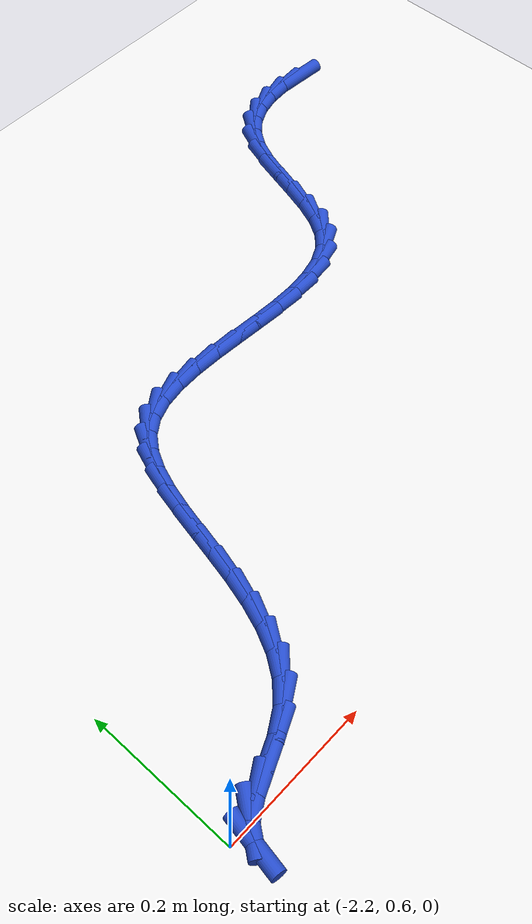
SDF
<sdf version="1.6">
 <world name="default">
  <model name="ground_plane">
   <static>1</static>
   <link name="link">
    <collision name="collision">
     <geometry><plane><normal>0 0 1</normal><size>100 100</size></plane></geometry>
     <surface><friction><ode><mu>100</mu><mu2>50</mu2></ode></friction></surface>
    </collision>
    <visual name="visual">
     <cast_shadows>0</cast_shadows>
     <geometry><plane><normal>0 0 1</normal><size>100 100</size></plane></geometry>
     <material>
      <script><uri>file://media/materials/scripts/gazebo.material</uri><name>Gazebo/WhiteGlow</name></script>
     </material>
    </visual>
   </link>
  </model>
  <model name="line">
   <link name="link_59">
    <pose>-1.2816094033642194 1.319456342314957 0.01 0 1.57 -0.06257776748838324</pose>
    <collision name="collision">
     <geometry><cylinder><radius>0.01</radius><length>0.08</length></cylinder></geometry>
    </collision>
    <visual name="visual">
     <material>
      <script><name>Gazebo/Blue</name><uri>file://media/materials/scripts/gazebo.material</uri></script>
     </material>
     <geometry><cylinder><radius>0.01</radius><length>0.08</length></cylinder></geometry>
    </visual>
   </link>
   <link name="link_60">
    <pose>-1.3143892659631247 1.3215103147380876 0.01 0 1.57 0.07672845350002035</pose>
    <collision name="collision">
     <geometry><cylinder><radius>0.01</radius><length>0.08</length></cylinder></geometry>
    </collision>
    <visual name="visual">
     <material>
      <script><name>Gazebo/Blue</name><uri>file://media/materials/scripts/gazebo.material</uri></script>
     </material>
     <geometry><cylinder><radius>0.01</radius><length>0.08</length></cylinder></geometry>
    </visual>
   </link>
   <link name="link_61">
    <pose>-1.3449915673991546 1.3191576287076126 0.01 0 1.57 0.24920556745682332</pose>
    <collision name="collision">
     <geometry><cylinder><radius>0.01</radius><length>0.08</length></cylinder></geometry>
    </collision>
    <visual name="visual">
     <material>
      <script><name>Gazebo/Blue</name><uri>file://media/materials/scripts/gazebo.material</uri></script>
     </material>
     <geometry><cylinder><radius>0.01</radius><length>0.08</length></cylinder></geometry>
    </visual>
   </link>
   <link name="link_62">
    <pose>-1.3728832882950446 1.3120593011130899 0.01 0 1.57 0.459057203063662</pose>
    <collision name="collision">
     <geometry><cylinder><radius>0.01</radius><length>0.08</length></cylinder></geometry>
    </collision>
    <visual name="visual">
     <material>
      <script><name>Gazebo/Blue</name><uri>file://media/materials/scripts/gazebo.material</uri></script>
     </material>
     <geometry><cylinder><radius>0.01</radius><length>0.08</length></cylinder></geometry>
    </visual>
   </link>
   <link name="link_63">
    <pose>-1.397531409273531 1.299876348844077 0.01 0 1.57 0.7007488997844443</pose>
    <collision name="collision">
     <geometry><cylinder><radius>0.01</radius><length>0.08</length></cylinder></geometry>
    </collision>
    <visual name="visual">
     <material>
      <script><name>Gazebo/Blue</name><uri>file://media/materials/scripts/gazebo.material</uri></script>
     </material>
     <geometry><cylinder><radius>0.01</radius><length>0.08</length></cylinder></geometry>
    </visual>
   </link>
   <link name="link_64">
    <pose>-1.4184029109573502 1.2822697887901326 0.01 0 1.57 0.9533107730913899</pose>
    <collision name="collision">
     <geometry><cylinder><radius>0.01</radius><length>0.08</length></cylinder></geometry>
    </collision>
    <visual name="visual">
     <material>
      <script><name>Gazebo/Blue</name><uri>file://media/materials/scripts/gazebo.material</uri></script>
     </material>
     <geometry><cylinder><radius>0.01</radius><length>0.08</length></cylinder></geometry>
    </visual>
   </link>
   <link name="link_65">
    <pose>-1.4349832308209747 1.2589211661364625 0.01 0 1.57 1.1543083031571306</pose>
    <collision name="collision">
     <geometry><cylinder><radius>0.01</radius><length>0.08</length></cylinder></geometry>
    </collision>
    <visual name="visual">
     <material>
      <script><name>Gazebo/Blue</name><uri>file://media/materials/scripts/gazebo.material</uri></script>
     </material>
     <geometry><cylinder><radius>0.01</radius><length>0.08</length></cylinder></geometry>
    </visual>
   </link>
   <link name="link_66">
    <pose>-1.4475855803237752 1.230432702537639 0.01 0 1.57 1.2633749799399936</pose>
    <collision name="collision">
     <geometry><cylinder><radius>0.01</radius><length>0.08</length></cylinder></geometry>
    </collision>
    <visual name="visual">
     <material>
      <script><name>Gazebo/Blue</name><uri>file://media/materials/scripts/gazebo.material</uri></script>
     </material>
     <geometry><cylinder><radius>0.01</radius><length>0.08</length></cylinder></geometry>
    </visual>
   </link>
   <link name="link_67">
    <pose>-1.4576670085853611 1.198678832157652 0.01 0 1.57 1.3020900851127613</pose>
    <collision name="collision">
     <geometry><cylinder><radius>0.01</radius><length>0.08</length></cylinder></geometry>
    </collision>
    <visual name="visual">
     <material>
      <script><name>Gazebo/Blue</name><uri>file://media/materials/scripts/gazebo.material</uri></script>
     </material>
     <geometry><cylinder><radius>0.01</radius><length>0.08</length></cylinder></geometry>
    </visual>
   </link>
   <link name="link_68">
    <pose>-1.4667683141438332 1.1656271379188876 0.01 0 1.57 1.2808304147023837</pose>
    <collision name="collision">
     <geometry><cylinder><radius>0.01</radius><length>0.08</length></cylinder></geometry>
    </collision>
    <visual name="visual">
     <material>
      <script><name>Gazebo/Blue</name><uri>file://media/materials/scripts/gazebo.material</uri></script>
     </material>
     <geometry><cylinder><radius>0.01</radius><length>0.08</length></cylinder></geometry>
    </visual>
   </link>
   <link name="link_69">
    <pose>-1.4764302955372917 1.1332452027437339 0.01 0 1.57 1.1941907021680145</pose>
    <collision name="collision">
     <geometry><cylinder><radius>0.01</radius><length>0.08</length></cylinder></geometry>
    </collision>
    <visual name="visual">
     <material>
      <script><name>Gazebo/Blue</name><uri>file://media/materials/scripts/gazebo.material</uri></script>
     </material>
     <geometry><cylinder><radius>0.01</radius><length>0.08</length></cylinder></geometry>
    </visual>
   </link>
   <link name="link_70">
    <pose>-1.4881937513038366 1.103500609554577 0.01 0 1.57 1.021014138136253</pose>
    <collision name="collision">
     <geometry><cylinder><radius>0.01</radius><length>0.08</length></cylinder></geometry>
    </collision>
    <visual name="visual">
     <material>
      <script><name>Gazebo/Blue</name><uri>file://media/materials/scripts/gazebo.material</uri></script>
     </material>
     <geometry><cylinder><radius>0.01</radius><length>0.08</length></cylinder></geometry>
    </visual>
   </link>
   <link name="link_71">
    <pose>-1.5035994799815682 1.0783609412738042 0.01 0 1.57 0.7430011290169706</pose>
    <collision name="collision">
     <geometry><cylinder><radius>0.01</radius><length>0.08</length></cylinder></geometry>
    </collision>
    <visual name="visual">
     <material>
      <script><name>Gazebo/Blue</name><uri>file://media/materials/scripts/gazebo.material</uri></script>
     </material>
     <geometry><cylinder><radius>0.01</radius><length>0.08</length></cylinder></geometry>
    </visual>
   </link>
   <link name="link_72">
    <pose>-1.5240296808286748 1.0595935965653562 0.01 0 1.57 0.4569677788438715</pose>
    <collision name="collision">
     <geometry><cylinder><radius>0.01</radius><length>0.08</length></cylinder></geometry>
    </collision>
    <visual name="visual">
     <material>
      <script><name>Gazebo/Blue</name><uri>file://media/materials/scripts/gazebo.material</uri></script>
     </material>
     <geometry><cylinder><radius>0.01</radius><length>0.08</length></cylinder></geometry>
    </visual>
   </link>
   <link name="link_73">
    <pose>-1.5494026702221477 1.0471182588375545 0.01 0 1.57 0.24180379570897376</pose>
    <collision name="collision">
     <geometry><cylinder><radius>0.01</radius><length>0.08</length></cylinder></geometry>
    </collision>
    <visual name="visual">
     <material>
      <script><name>Gazebo/Blue</name><uri>file://media/materials/scripts/gazebo.material</uri></script>
     </material>
     <geometry><cylinder><radius>0.01</radius><length>0.08</length></cylinder></geometry>
    </visual>
   </link>
   <link name="link_74">
    <pose>-1.578846107219926 1.0398566425975548 0.01 0 1.57 0.09580015212663569</pose>
    <collision name="collision">
     <geometry><cylinder><radius>0.01</radius><length>0.08</length></cylinder></geometry>
    </collision>
    <visual name="visual">
     <material>
      <script><name>Gazebo/Blue</name><uri>file://media/materials/scripts/gazebo.material</uri></script>
     </material>
     <geometry><cylinder><radius>0.01</radius><length>0.08</length></cylinder></geometry>
    </visual>
   </link>
   <link name="link_75">
    <pose>-1.6114799307343088 1.036720717972648 0.01 0 1.57 0.0028119907480594966</pose>
    <collision name="collision">
     <geometry><cylinder><radius>0.01</radius><length>0.08</length></cylinder></geometry>
    </collision>
    <visual name="visual">
     <material>
      <script><name>Gazebo/Blue</name><uri>file://media/materials/scripts/gazebo.material</uri></script>
     </material>
     <geometry><cylinder><radius>0.01</radius><length>0.08</length></cylinder></geometry>
    </visual>
   </link>
   <link name="link_76">
    <pose>-1.6464240796775942 1.0366224550901229 0.01 0 1.57 -0.050853679966673365</pose>
    <collision name="collision">
     <geometry><cylinder><radius>0.01</radius><length>0.08</length></cylinder></geometry>
    </collision>
    <visual name="visual">
     <material>
      <script><name>Gazebo/Blue</name><uri>file://media/materials/scripts/gazebo.material</uri></script>
     </material>
     <geometry><cylinder><radius>0.01</radius><length>0.08</length></cylinder></geometry>
    </visual>
   </link>
   <link name="link_77">
    <pose>-1.682798492962081 1.0384738240772693 0.01 0 1.57 -0.07334144981078479</pose>
    <collision name="collision">
     <geometry><cylinder><radius>0.01</radius><length>0.08</length></cylinder></geometry>
    </collision>
    <visual name="visual">
     <material>
      <script><name>Gazebo/Blue</name><uri>file://media/materials/scripts/gazebo.material</uri></script>
     </material>
     <geometry><cylinder><radius>0.01</radius><length>0.08</length></cylinder></geometry>
    </visual>
   </link>
   <link name="link_78">
    <pose>-1.7197231095000678 1.041186795061376 0.01 0 1.57 -0.06784378479950667</pose>
    <collision name="collision">
     <geometry><cylinder><radius>0.01</radius><length>0.08</length></cylinder></geometry>
    </collision>
    <visual name="visual">
     <material>
      <script><name>Gazebo/Blue</name><uri>file://media/materials/scripts/gazebo.material</uri></script>
     </material>
     <geometry><cylinder><radius>0.01</radius><length>0.08</length></cylinder></geometry>
    </visual>
   </link>
   <link name="link_79">
    <pose>-1.756317868203853 1.0436733381697332 0.01 0 1.57 -0.03311183490366652</pose>
    <collision name="collision">
     <geometry><cylinder><radius>0.01</radius><length>0.08</length></cylinder></geometry>
    </collision>
    <visual name="visual">
     <material>
      <script><name>Gazebo/Blue</name><uri>file://media/materials/scripts/gazebo.material</uri></script>
     </material>
     <geometry><cylinder><radius>0.01</radius><length>0.08</length></cylinder></geometry>
    </visual>
   </link>
   <link name="link_80">
    <pose>-1.791702707985735 1.0448454235296298 0.01 0 1.57 0.03693791257811529</pose>
    <collision name="collision">
     <geometry><cylinder><radius>0.01</radius><length>0.08</length></cylinder></geometry>
    </collision>
    <visual name="visual">
     <material>
      <script><name>Gazebo/Blue</name><uri>file://media/materials/scripts/gazebo.material</uri></script>
     </material>
     <geometry><cylinder><radius>0.01</radius><length>0.08</length></cylinder></geometry>
    </visual>
   </link>
   <link name="link_81">
    <pose>-1.8249975677580126 1.0436150212683557 0.01 0 1.57 0.15443873204071865</pose>
    <collision name="collision">
     <geometry><cylinder><radius>0.01</radius><length>0.08</length></cylinder></geometry>
    </collision>
    <visual name="visual">
     <material>
      <script><name>Gazebo/Blue</name><uri>file://media/materials/scripts/gazebo.material</uri></script>
     </material>
     <geometry><cylinder><radius>0.01</radius><length>0.08</length></cylinder></geometry>
    </visual>
   </link>
   <link name="link_82">
    <pose>-1.855322386432983 1.0388941015131996 0.01 0 1.57 0.3377954673193905</pose>
    <collision name="collision">
     <geometry><cylinder><radius>0.01</radius><length>0.08</length></cylinder></geometry>
    </collision>
    <visual name="visual">
     <material>
      <script><name>Gazebo/Blue</name><uri>file://media/materials/scripts/gazebo.material</uri></script>
     </material>
     <geometry><cylinder><radius>0.01</radius><length>0.08</length></cylinder></geometry>
    </visual>
   </link>
   <link name="link_83">
    <pose>-1.8817971029229468 1.0295946343914515 0.01 0 1.57 0.5992361138544208</pose>
    <collision name="collision">
     <geometry><cylinder><radius>0.01</radius><length>0.08</length></cylinder></geometry>
    </collision>
    <visual name="visual">
     <material>
      <script><name>Gazebo/Blue</name><uri>file://media/materials/scripts/gazebo.material</uri></script>
     </material>
     <geometry><cylinder><radius>0.01</radius><length>0.08</length></cylinder></geometry>
    </visual>
   </link>
   <link name="link_84">
    <pose>-1.9036042955837595 1.014699973411687 0.01 0 1.57 0.8694781162234348</pose>
    <collision name="collision">
     <geometry><cylinder><radius>0.01</radius><length>0.08</length></cylinder></geometry>
    </collision>
    <visual name="visual">
     <material>
      <script><name>Gazebo/Blue</name><uri>file://media/materials/scripts/gazebo.material</uri></script>
     </material>
     <geometry><cylinder><radius>0.01</radius><length>0.08</length></cylinder></geometry>
    </visual>
   </link>
   <link name="link_85">
    <pose>-1.9208646352050678 0.9942625143037963 0.01 0 1.57 1.0756529019569872</pose>
    <collision name="collision">
     <geometry><cylinder><radius>0.01</radius><length>0.08</length></cylinder></geometry>
    </collision>
    <visual name="visual">
     <material>
      <script><name>Gazebo/Blue</name><uri>file://media/materials/scripts/gazebo.material</uri></script>
     </material>
     <geometry><cylinder><radius>0.01</radius><length>0.08</length></cylinder></geometry>
    </visual>
   </link>
   <link name="link_86">
    <pose>-1.9344213579959704 0.9691580822521987 0.01 0 1.57 1.2154591230828629</pose>
    <collision name="collision">
     <geometry><cylinder><radius>0.01</radius><length>0.08</length></cylinder></geometry>
    </collision>
    <visual name="visual">
     <material>
      <script><name>Gazebo/Blue</name><uri>file://media/materials/scripts/gazebo.material</uri></script>
     </material>
     <geometry><cylinder><radius>0.01</radius><length>0.08</length></cylinder></geometry>
    </visual>
   </link>
   <link name="link_87">
    <pose>-1.9451363113336224 0.9402837115713795 0.01 0 1.57 1.3022974448431068</pose>
    <collision name="collision">
     <geometry><cylinder><radius>0.01</radius><length>0.08</length></cylinder></geometry>
    </collision>
    <visual name="visual">
     <material>
      <script><name>Gazebo/Blue</name><uri>file://media/materials/scripts/gazebo.material</uri></script>
     </material>
     <geometry><cylinder><radius>0.01</radius><length>0.08</length></cylinder></geometry>
    </visual>
   </link>
   <link name="link_88">
    <pose>-1.9538713425951806 0.9085364365758255 0.01 0 1.57 1.3486565051894228</pose>
    <collision name="collision">
     <geometry><cylinder><radius>0.01</radius><length>0.08</length></cylinder></geometry>
    </collision>
    <visual name="visual">
     <material>
      <script><name>Gazebo/Blue</name><uri>file://media/materials/scripts/gazebo.material</uri></script>
     </material>
     <geometry><cylinder><radius>0.01</radius><length>0.08</length></cylinder></geometry>
    </visual>
   </link>
   <link name="link_89">
    <pose>-1.9614882991578013 0.8748132915800215 0.01 0 1.57 1.362364888471308</pose>
    <collision name="collision">
     <geometry><cylinder><radius>0.01</radius><length>0.08</length></cylinder></geometry>
    </collision>
    <visual name="visual">
     <material>
      <script><name>Gazebo/Blue</name><uri>file://media/materials/scripts/gazebo.material</uri></script>
     </material>
     <geometry><cylinder><radius>0.01</radius><length>0.08</length></cylinder></geometry>
    </visual>
   </link>
   <link name="link_90">
    <pose>-1.9688490283986404 0.8400113108984537 0.01 0 1.57 1.3468987438417082</pose>
    <collision name="collision">
     <geometry><cylinder><radius>0.01</radius><length>0.08</length></cylinder></geometry>
    </collision>
    <visual name="visual">
     <material>
      <script><name>Gazebo/Blue</name><uri>file://media/materials/scripts/gazebo.material</uri></script>
     </material>
     <geometry><cylinder><radius>0.01</radius><length>0.08</length></cylinder></geometry>
    </visual>
   </link>
   <link name="link_91">
    <pose>-1.976815377694855 0.8050275288456082 0.01 0 1.57 1.3021597698983414</pose>
    <collision name="collision">
     <geometry><cylinder><radius>0.01</radius><length>0.08</length></cylinder></geometry>
    </collision>
    <visual name="visual">
     <material>
      <script><name>Gazebo/Blue</name><uri>file://media/materials/scripts/gazebo.material</uri></script>
     </material>
     <geometry><cylinder><radius>0.01</radius><length>0.08</length></cylinder></geometry>
    </visual>
   </link>
   <link name="link_92">
    <pose>-1.9862491944236007 0.7707589797359706 0.01 0 1.57 1.2250545200349499</pose>
    <collision name="collision">
     <geometry><cylinder><radius>0.01</radius><length>0.08</length></cylinder></geometry>
    </collision>
    <visual name="visual">
     <material>
      <script><name>Gazebo/Blue</name><uri>file://media/materials/scripts/gazebo.material</uri></script>
     </material>
     <geometry><cylinder><radius>0.01</radius><length>0.08</length></cylinder></geometry>
    </visual>
   </link>
   <link name="link_93">
    <pose>-1.9980123259620353 0.7381026978840275 0.01 0 1.57 1.1103167917104344</pose>
    <collision name="collision">
     <geometry><cylinder><radius>0.01</radius><length>0.08</length></cylinder></geometry>
    </collision>
    <visual name="visual">
     <material>
      <script><name>Gazebo/Blue</name><uri>file://media/materials/scripts/gazebo.material</uri></script>
     </material>
     <geometry><cylinder><radius>0.01</radius><length>0.08</length></cylinder></geometry>
    </visual>
   </link>
   <link name="link_94">
    <pose>-2.0129666196873126 0.7079557176042637 0.01 0 1.57 0.9528574332811468</pose>
    <collision name="collision">
     <geometry><cylinder><radius>0.01</radius><length>0.08</length></cylinder></geometry>
    </collision>
    <visual name="visual">
     <material>
      <script><name>Gazebo/Blue</name><uri>file://media/materials/scripts/gazebo.material</uri></script>
     </material>
     <geometry><cylinder><radius>0.01</radius><length>0.08</length></cylinder></geometry>
    </visual>
   </link>
   <link name="link_95">
    <pose>-2.031973922976591 0.6812150732111657 0.01 0 1.57 0.7533792532879194</pose>
    <collision name="collision">
     <geometry><cylinder><radius>0.01</radius><length>0.08</length></cylinder></geometry>
    </collision>
    <visual name="visual">
     <material>
      <script><name>Gazebo/Blue</name><uri>file://media/materials/scripts/gazebo.material</uri></script>
     </material>
     <geometry><cylinder><radius>0.01</radius><length>0.08</length></cylinder></geometry>
    </visual>
   </link>
   <link name="link_96">
    <pose>-2.055896083207026 0.6587777990192196 0.01 0 1.57 0.5400638967923778</pose>
    <collision name="collision">
     <geometry><cylinder><radius>0.01</radius><length>0.08</length></cylinder></geometry>
    </collision>
    <visual name="visual">
     <material>
      <script><name>Gazebo/Blue</name><uri>file://media/materials/scripts/gazebo.material</uri></script>
     </material>
     <geometry><cylinder><radius>0.01</radius><length>0.08</length></cylinder></geometry>
    </visual>
   </link>
   <link name="link_97">
    <pose>-2.085128116561932 0.6412527132084898 0.01 0 1.57 0.4186947784816746</pose>
    <collision name="collision">
     <geometry><cylinder><radius>0.01</radius><length>0.08</length></cylinder></geometry>
    </collision>
    <visual name="visual">
     <material>
      <script><name>Gazebo/Blue</name><uri>file://media/materials/scripts/gazebo.material</uri></script>
     </material>
     <geometry><cylinder><radius>0.01</radius><length>0.08</length></cylinder></geometry>
    </visual>
   </link>
   <link name="link_98">
    <pose>-2.1167300042739363 0.6271896222770321 0.01 0 1.57 0.4125643488315168</pose>
    <collision name="collision">
     <geometry><cylinder><radius>0.01</radius><length>0.08</length></cylinder></geometry>
    </collision>
    <visual name="visual">
     <material>
      <script><name>Gazebo/Blue</name><uri>file://media/materials/scripts/gazebo.material</uri></script>
     </material>
     <geometry><cylinder><radius>0.01</radius><length>0.08</length></cylinder></geometry>
    </visual>
   </link>
   <link name="link_99">
    <pose>-2.1463108499570964 0.6142425778027997 0.01 0 1.57 0.5493500677894209</pose>
    <collision name="collision">
     <geometry><cylinder><radius>0.01</radius><length>0.08</length></cylinder></geometry>
    </collision>
    <visual name="visual">
     <material>
      <script><name>Gazebo/Blue</name><uri>file://media/materials/scripts/gazebo.material</uri></script>
     </material>
     <geometry><cylinder><radius>0.01</radius><length>0.08</length></cylinder></geometry>
    </visual>
   </link>
   <link name="link_100">
    <pose>-2.1694738031986125 0.6000619554170034 0.01 0 1.57 0.9224842840296555</pose>
    <collision name="collision">
     <geometry><cylinder><radius>0.01</radius><length>0.08</length></cylinder></geometry>
    </collision>
    <visual name="visual">
     <material>
      <script><name>Gazebo/Blue</name><uri>file://media/materials/scripts/gazebo.material</uri></script>
     </material>
     <geometry><cylinder><radius>0.01</radius><length>0.08</length></cylinder></geometry>
    </visual>
   </link>
   <link name="link_101">
    <pose>-2.1826373265688 0.5826853844942229 0.01 0 1.57 1.4062197032548212</pose>
    <collision name="collision">
     <geometry><cylinder><radius>0.01</radius><length>0.08</length></cylinder></geometry>
    </collision>
    <visual name="visual">
     <material>
      <script><name>Gazebo/Blue</name><uri>file://media/materials/scripts/gazebo.material</uri></script>
     </material>
     <geometry><cylinder><radius>0.01</radius><length>0.08</length></cylinder></geometry>
    </visual>
   </link>
  </model>
 </world>
</sdf>
